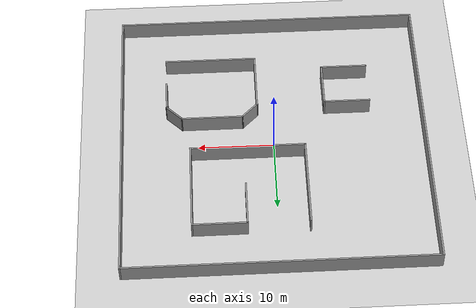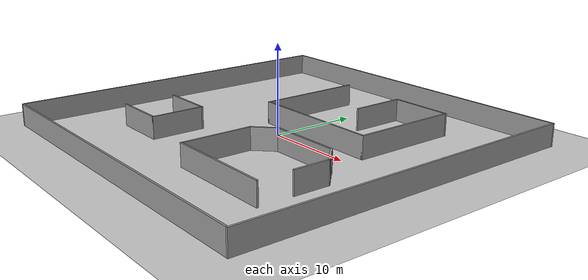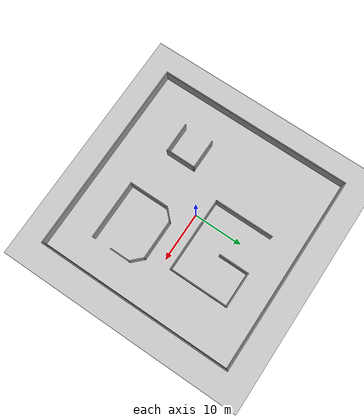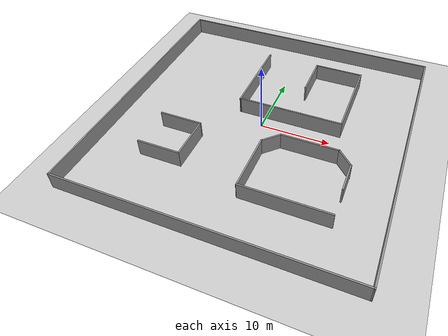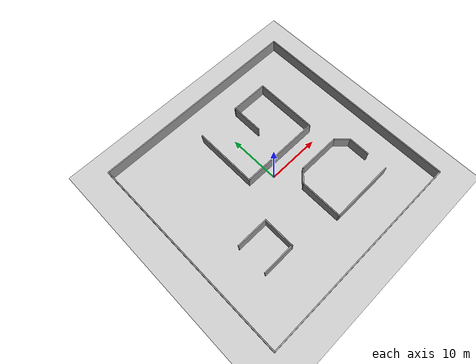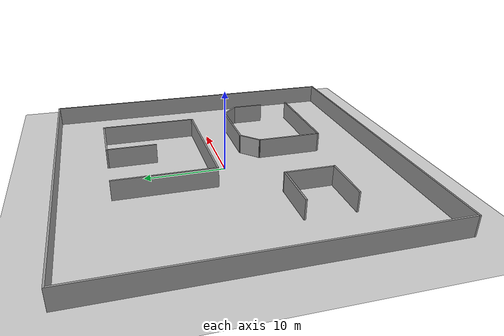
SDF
<sdf version="1.4">
 <world name="default">
  <light name="sun" type="directional">
   <pose>0 0 10 0 -0 0</pose>
   <diffuse>0.8 0.8 0.8 1</diffuse>
   <specular>0.2 0.2 0.2 1</specular>
   <attenuation>
    <range>1000</range>
    <constant>0.9</constant>
    <linear>0.01</linear>
    <quadratic>0.001</quadratic>
   </attenuation>
   <direction>-0.5 0.1 -0.9</direction>
  </light>
  <model name="ground_plane">
   <static>1</static>
   <link name="link">
    <collision name="collision">
     <geometry><plane><normal>0 0 1</normal><size>100 100</size></plane></geometry>
     <surface><friction><ode><mu>100</mu><mu2>50</mu2></ode></friction></surface>
    </collision>
    <visual name="visual">
     <cast_shadows>0</cast_shadows>
     <geometry><plane><normal>0 0 1</normal><size>100 100</size></plane></geometry>
     <material>
      <script><uri>file://media/materials/scripts/gazebo.material</uri><name>Gazebo/Grey</name></script>
     </material>
    </visual>
    <velocity_decay><linear>0</linear><angular>0</angular></velocity_decay>
   </link>
  </model>
  <physics type="ode">
   <max_step_size>0.001</max_step_size>
   <real_time_factor>1</real_time_factor>
   <real_time_update_rate>1000</real_time_update_rate>
   <gravity>0 0 -9.8</gravity>
  </physics>
  <scene><ambient>0.4 0.4 0.4 1</ambient><background>0.7 0.7 0.7 1</background><shadows>1</shadows></scene>
  <spherical_coordinates>
   <surface_model>EARTH_WGS84</surface_model>
   <latitude_deg>0</latitude_deg>
   <longitude_deg>0</longitude_deg>
   <elevation>0</elevation>
   <heading_deg>0</heading_deg>
  </spherical_coordinates>
  <model name="udg">
   <pose>-20.0102 -20.1101 0 0 -0 0</pose>
   <link name="Wall_13">
    <collision name="Wall_13_Collision">
     <geometry><box><size>40.2 0.2 2.5</size></box></geometry>
     <pose>0 0 1.25 0 -0 0</pose>
    </collision>
    <visual name="Wall_13_Visual">
     <pose>0 0 1.25 0 -0 0</pose>
     <geometry><box><size>40.2 0.2 2.5</size></box></geometry>
     <material>
      <script><uri>file://media/materials/scripts/gazebo.material</uri><name>Gazebo/Grey</name></script>
     </material>
    </visual>
    <velocity_decay><linear>0</linear><angular>0</angular></velocity_decay>
    <pose>0 20 0 0 -0 1.5708</pose>
   </link>
   <link name="Wall_15">
    <collision name="Wall_15_Collision">
     <geometry><box><size>40.2 0.2 2.5</size></box></geometry>
     <pose>0 0 1.25 0 -0 0</pose>
    </collision>
    <visual name="Wall_15_Visual">
     <pose>0 0 1.25 0 -0 0</pose>
     <geometry><box><size>40.2 0.2 2.5</size></box></geometry>
     <material>
      <script><uri>file://media/materials/scripts/gazebo.material</uri><name>Gazebo/Grey</name></script>
     </material>
    </visual>
    <velocity_decay><linear>0</linear><angular>0</angular></velocity_decay>
    <pose>20 0 0 0 -0 0</pose>
   </link>
   <link name="Wall_17">
    <collision name="Wall_17_Collision">
     <geometry><box><size>40.2 0.2 2.5</size></box></geometry>
     <pose>0 0 1.25 0 -0 0</pose>
    </collision>
    <visual name="Wall_17_Visual">
     <pose>0 0 1.25 0 -0 0</pose>
     <geometry><box><size>40.2 0.2 2.5</size></box></geometry>
     <material>
      <script><uri>file://media/materials/scripts/gazebo.material</uri><name>Gazebo/Grey</name></script>
     </material>
    </visual>
    <velocity_decay><linear>0</linear><angular>0</angular></velocity_decay>
    <pose>40 20 0 0 -0 1.5708</pose>
   </link>
   <link name="Wall_22">
    <collision name="Wall_22_Collision">
     <geometry><box><size>40.2 0.2 2.5</size></box></geometry>
     <pose>0 0 1.25 0 -0 0</pose>
    </collision>
    <visual name="Wall_22_Visual">
     <pose>0 0 1.25 0 -0 0</pose>
     <geometry><box><size>40.2 0.2 2.5</size></box></geometry>
     <material>
      <script><uri>file://media/materials/scripts/gazebo.material</uri><name>Gazebo/Grey</name></script>
     </material>
    </visual>
    <velocity_decay><linear>0</linear><angular>0</angular></velocity_decay>
    <pose>20 40 0 0 -0 3.14159</pose>
   </link>
   <link name="Wall_24">
    <collision name="Wall_24_Collision">
     <geometry><box><size>12.2 0.2 2.5</size></box></geometry>
     <pose>0 0 1.25 0 -0 0</pose>
    </collision>
    <visual name="Wall_24_Visual">
     <pose>0 0 1.25 0 -0 0</pose>
     <geometry><box><size>12.2 0.2 2.5</size></box></geometry>
     <material>
      <script><uri>file://media/materials/scripts/gazebo.material</uri><name>Gazebo/Grey</name></script>
     </material>
    </visual>
    <velocity_decay><linear>0</linear><angular>0</angular></velocity_decay>
    <pose>16 28 0 0 0 -1.5708</pose>
   </link>
   <link name="Wall_26">
    <collision name="Wall_26_Collision">
     <geometry><box><size>6.2 0.2 2.5</size></box></geometry>
     <pose>0 0 1.25 0 -0 0</pose>
    </collision>
    <visual name="Wall_26_Visual">
     <pose>0 0 1.25 0 -0 0</pose>
     <geometry><box><size>6.2 0.2 2.5</size></box></geometry>
     <material>
      <script><uri>file://media/materials/scripts/gazebo.material</uri><name>Gazebo/Grey</name></script>
     </material>
    </visual>
    <velocity_decay><linear>0</linear><angular>0</angular></velocity_decay>
    <pose>10 15 0 0 -0 3.14159</pose>
   </link>
   <link name="Wall_28">
    <collision name="Wall_28_Collision">
     <geometry><box><size>6.2 0.2 2.5</size></box></geometry>
     <pose>0 0 1.25 0 -0 0</pose>
    </collision>
    <visual name="Wall_28_Visual">
     <pose>0 0 1.25 0 -0 0</pose>
     <geometry><box><size>6.2 0.2 2.5</size></box></geometry>
     <material>
      <script><uri>file://media/materials/scripts/gazebo.material</uri><name>Gazebo/Grey</name></script>
     </material>
    </visual>
    <velocity_decay><linear>0</linear><angular>0</angular></velocity_decay>
    <pose>13 12 0 0 -0 1.5708</pose>
   </link>
   <link name="Wall_30">
    <collision name="Wall_30_Collision">
     <geometry><box><size>6.2 0.2 2.5</size></box></geometry>
     <pose>0 0 1.25 0 -0 0</pose>
    </collision>
    <visual name="Wall_30_Visual">
     <pose>0 0 1.25 0 -0 0</pose>
     <geometry><box><size>6.2 0.2 2.5</size></box></geometry>
     <material>
      <script><uri>file://media/materials/scripts/gazebo.material</uri><name>Gazebo/Grey</name></script>
     </material>
    </visual>
    <velocity_decay><linear>0</linear><angular>0</angular></velocity_decay>
    <pose>10 9 0 0 -0 0</pose>
   </link>
   <link name="Wall_32">
    <collision name="Wall_32_Collision">
     <geometry><box><size>15.2 0.2 2.5</size></box></geometry>
     <pose>0 0 1.25 0 -0 0</pose>
    </collision>
    <visual name="Wall_32_Visual">
     <pose>0 0 1.25 0 -0 0</pose>
     <geometry><box><size>15.2 0.2 2.5</size></box></geometry>
     <material>
      <script><uri>file://media/materials/scripts/gazebo.material</uri><name>Gazebo/Grey</name></script>
     </material>
    </visual>
    <velocity_decay><linear>0</linear><angular>0</angular></velocity_decay>
    <pose>23.5 22 0 0 -0 0</pose>
   </link>
   <link name="Wall_34">
    <collision name="Wall_34_Collision">
     <geometry><box><size>12.2 0.2 2.5</size></box></geometry>
     <pose>0 0 1.25 0 -0 0</pose>
    </collision>
    <visual name="Wall_34_Visual">
     <pose>0 0 1.25 0 -0 0</pose>
     <geometry><box><size>12.2 0.2 2.5</size></box></geometry>
     <material>
      <script><uri>file://media/materials/scripts/gazebo.material</uri><name>Gazebo/Grey</name></script>
     </material>
    </visual>
    <velocity_decay><linear>0</linear><angular>0</angular></velocity_decay>
    <pose>31 28 0 0 -0 1.5708</pose>
   </link>
   <link name="Wall_36">
    <collision name="Wall_36_Collision">
     <geometry><box><size>7.2 0.2 2.5</size></box></geometry>
     <pose>0 0 1.25 0 -0 0</pose>
    </collision>
    <visual name="Wall_36_Visual">
     <pose>0 0 1.25 0 -0 0</pose>
     <geometry><box><size>7.2 0.2 2.5</size></box></geometry>
     <material>
      <script><uri>file://media/materials/scripts/gazebo.material</uri><name>Gazebo/Grey</name></script>
     </material>
    </visual>
    <velocity_decay><linear>0</linear><angular>0</angular></velocity_decay>
    <pose>27.5 34 0 0 -0 3.14159</pose>
   </link>
   <link name="Wall_38">
    <collision name="Wall_38_Collision">
     <geometry><box><size>6.2 0.2 2.5</size></box></geometry>
     <pose>0 0 1.25 0 -0 0</pose>
    </collision>
    <visual name="Wall_38_Visual">
     <pose>0 0 1.25 0 -0 0</pose>
     <geometry><box><size>6.2 0.2 2.5</size></box></geometry>
     <material>
      <script><uri>file://media/materials/scripts/gazebo.material</uri><name>Gazebo/Grey</name></script>
     </material>
    </visual>
    <velocity_decay><linear>0</linear><angular>0</angular></velocity_decay>
    <pose>24 31 0 0 0 -1.5708</pose>
   </link>
   <link name="Wall_40">
    <collision name="Wall_40_Collision">
     <geometry><box><size>12.2 0.2 2.5</size></box></geometry>
     <pose>0 0 1.25 0 -0 0</pose>
    </collision>
    <visual name="Wall_40_Visual">
     <pose>0 0 1.25 0 -0 0</pose>
     <geometry><box><size>12.2 0.2 2.5</size></box></geometry>
     <material>
      <script><uri>file://media/materials/scripts/gazebo.material</uri><name>Gazebo/Grey</name></script>
     </material>
    </visual>
    <velocity_decay><linear>0</linear><angular>0</angular></velocity_decay>
    <pose>28 7 0 0 -0 0</pose>
   </link>
   <link name="Wall_42">
    <collision name="Wall_42_Collision">
     <geometry><box><size>8.2 0.2 2.5</size></box></geometry>
     <pose>0 0 1.25 0 -0 0</pose>
    </collision>
    <visual name="Wall_42_Visual">
     <pose>0 0 1.25 0 -0 0</pose>
     <geometry><box><size>8.2 0.2 2.5</size></box></geometry>
     <material>
      <script><uri>file://media/materials/scripts/gazebo.material</uri><name>Gazebo/Grey</name></script>
     </material>
    </visual>
    <velocity_decay><linear>0</linear><angular>0</angular></velocity_decay>
    <pose>22 11 0 0 -0 1.5708</pose>
   </link>
   <link name="Wall_44">
    <collision name="Wall_44_Collision">
     <geometry><box><size>3.02843 0.2 2.5</size></box></geometry>
     <pose>0 0 1.25 0 -0 0</pose>
    </collision>
    <visual name="Wall_44_Visual">
     <pose>0 0 1.25 0 -0 0</pose>
     <geometry><box><size>3.02843 0.2 2.5</size></box></geometry>
     <material>
      <script><uri>file://media/materials/scripts/gazebo.material</uri><name>Gazebo/Grey</name></script>
     </material>
    </visual>
    <velocity_decay><linear>0</linear><angular>0</angular></velocity_decay>
    <pose>23 16 0 0 -0 0.785398</pose>
   </link>
   <link name="Wall_46">
    <collision name="Wall_46_Collision">
     <geometry><box><size>8.2 0.2 2.5</size></box></geometry>
     <pose>0 0 1.25 0 -0 0</pose>
    </collision>
    <visual name="Wall_46_Visual">
     <pose>0 0 1.25 0 -0 0</pose>
     <geometry><box><size>8.2 0.2 2.5</size></box></geometry>
     <material>
      <script><uri>file://media/materials/scripts/gazebo.material</uri><name>Gazebo/Grey</name></script>
     </material>
    </visual>
    <velocity_decay><linear>0</linear><angular>0</angular></velocity_decay>
    <pose>28 17 0 0 -0 0</pose>
   </link>
   <link name="Wall_48">
    <collision name="Wall_48_Collision">
     <geometry><box><size>3.02843 0.2 2.5</size></box></geometry>
     <pose>0 0 1.25 0 -0 0</pose>
    </collision>
    <visual name="Wall_48_Visual">
     <pose>0 0 1.25 0 -0 0</pose>
     <geometry><box><size>3.02843 0.2 2.5</size></box></geometry>
     <material>
      <script><uri>file://media/materials/scripts/gazebo.material</uri><name>Gazebo/Grey</name></script>
     </material>
    </visual>
    <velocity_decay><linear>0</linear><angular>0</angular></velocity_decay>
    <pose>33 16 0 0 0 -0.785398</pose>
   </link>
   <link name="Wall_50">
    <collision name="Wall_50_Collision">
     <geometry><box><size>4.2 0.2 2.5</size></box></geometry>
     <pose>0 0 1.25 0 -0 0</pose>
    </collision>
    <visual name="Wall_50_Visual">
     <pose>0 0 1.25 0 -0 0</pose>
     <geometry><box><size>4.2 0.2 2.5</size></box></geometry>
     <material>
      <script><uri>file://media/materials/scripts/gazebo.material</uri><name>Gazebo/Grey</name></script>
     </material>
    </visual>
    <velocity_decay><linear>0</linear><angular>0</angular></velocity_decay>
    <pose>34 13 0 0 0 -1.5708</pose>
   </link>
   <static>1</static>
  </model>
 </world>
</sdf>
